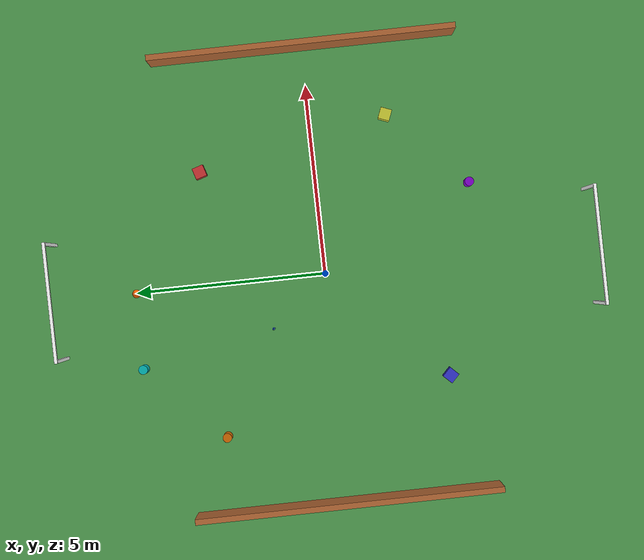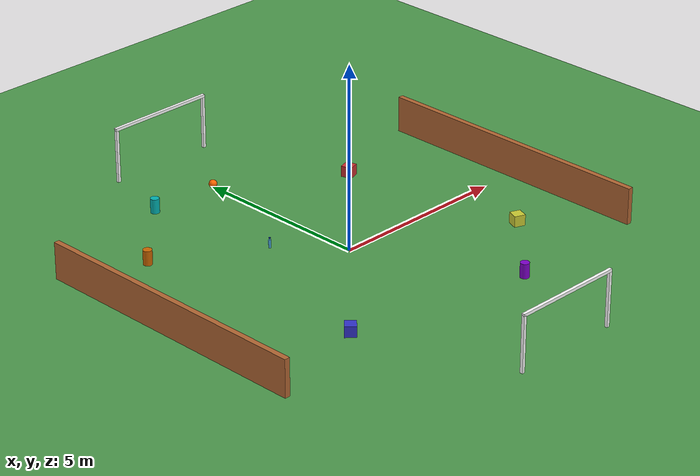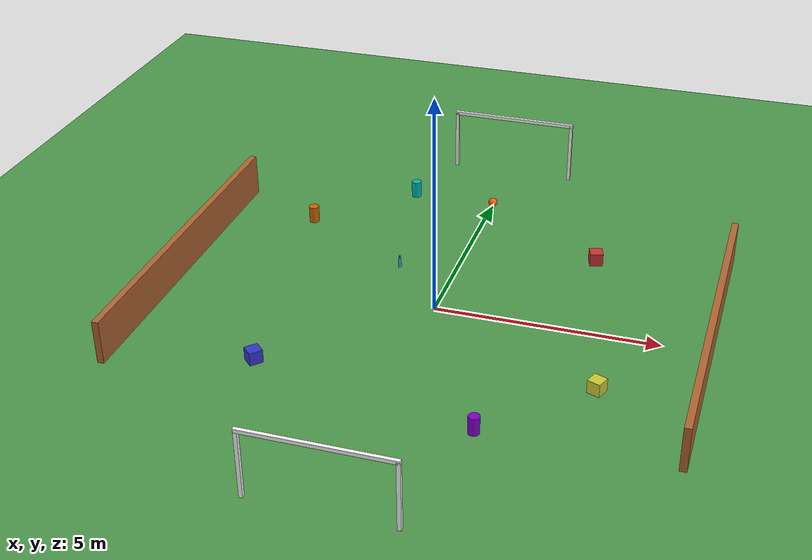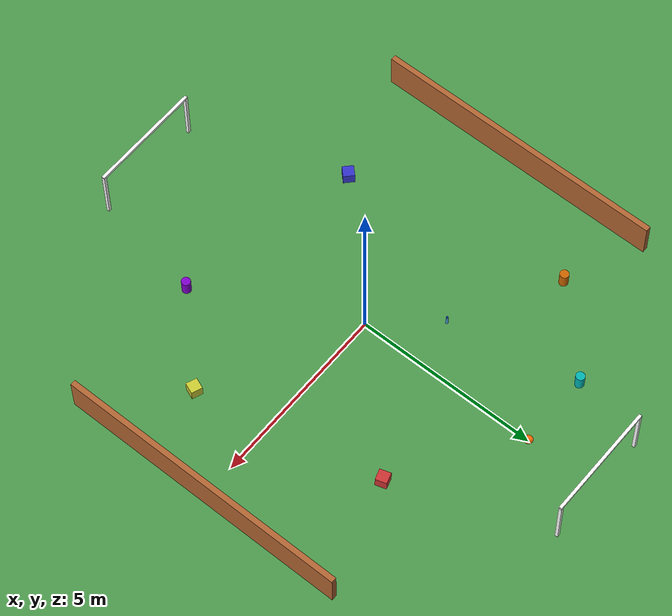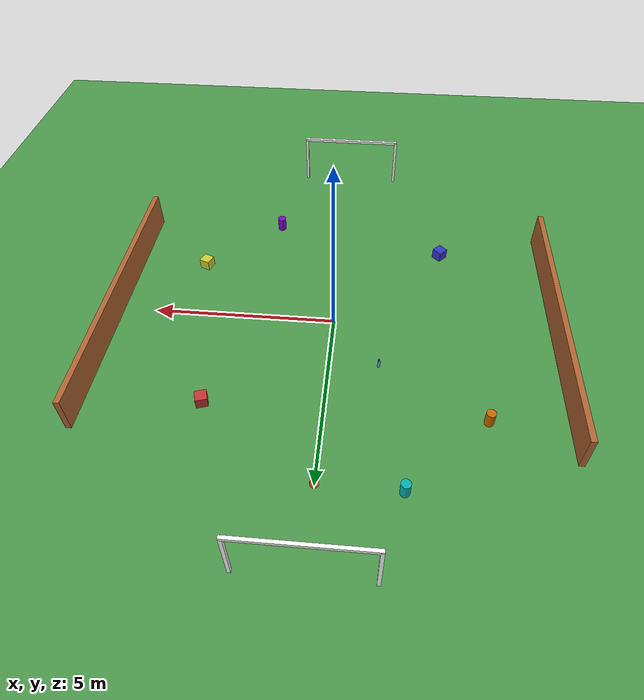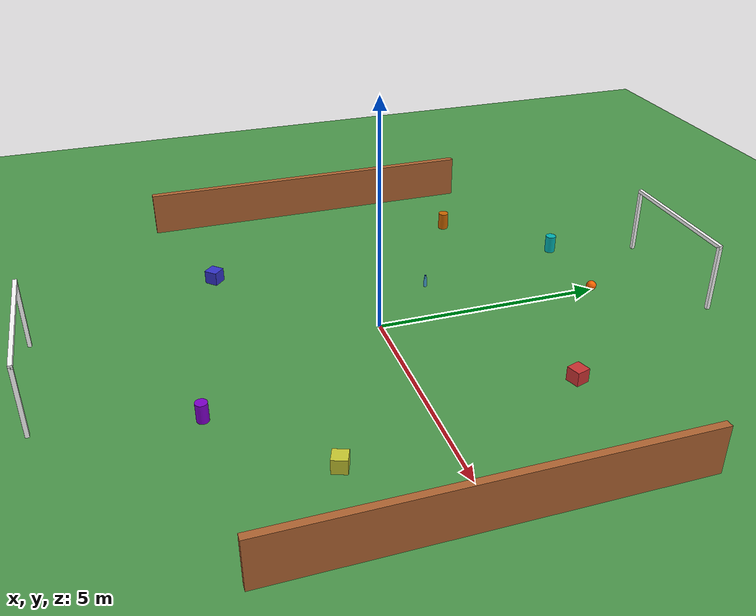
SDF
<sdf version="1.6">
 <world name="tb3_lab">
  <physics name="1ms" type="ignored">
   <max_step_size>0.001</max_step_size>
   <real_time_factor>1.0</real_time_factor>
  </physics>
  <plugin filename="gz-sim-physics-system" name="gz::sim::systems::Physics"/>
  <plugin filename="gz-sim-user-commands-system" name="gz::sim::systems::UserCommands"/>
  <plugin filename="gz-sim-scene-broadcaster-system" name="gz::sim::systems::SceneBroadcaster"/>
  <plugin filename="gz-sim-contact-system" name="gz::sim::systems::Contact"/>
  <plugin filename="gz-sim-sensors-system" name="gz::sim::systems::Sensors">
   <render_engine>ogre2</render_engine>
   <headless_rendering>true</headless_rendering>
  </plugin>
  <plugin filename="gz-sim-imu-system" name="gz::sim::systems::Imu"/>
  <light name="sun" type="directional">
   <pose>0 0 10 0 0 0</pose>
   <diffuse>0.8 0.8 0.8 1</diffuse>
   <specular>0.2 0.2 0.2 1</specular>
   <direction>-0.5 0.1 -0.9</direction>
  </light>
  <model name="ground_plane">
   <static>true</static>
   <link name="link">
    <collision name="col"><geometry><plane><normal>0 0 1</normal><size>30 30</size></plane></geometry></collision>
    <visual name="vis">
     <geometry><plane><normal>0 0 1</normal><size>30 30</size></plane></geometry>
     <material><ambient>0.3 0.6 0.3 1</ambient><diffuse>0.3 0.6 0.3 1</diffuse></material>
    </visual>
   </link>
  </model>
  <model name="goal_north">
   <static>true</static>
   <pose>0 7 0 0 0 0</pose>
   <link name="post_left">
    <pose>-1.5 0 0.75 0 0 0</pose>
    <collision name="col"><geometry><box><size>0.08 0.08 1.5</size></box></geometry></collision>
    <visual name="vis">
     <geometry><box><size>0.08 0.08 1.5</size></box></geometry>
     <material><ambient>1 1 1 1</ambient><diffuse>1 1 1 1</diffuse></material>
    </visual>
   </link>
   <link name="post_right">
    <pose>1.5 0 0.75 0 0 0</pose>
    <collision name="col"><geometry><box><size>0.08 0.08 1.5</size></box></geometry></collision>
    <visual name="vis">
     <geometry><box><size>0.08 0.08 1.5</size></box></geometry>
     <material><ambient>1 1 1 1</ambient><diffuse>1 1 1 1</diffuse></material>
    </visual>
   </link>
   <link name="crossbar">
    <pose>0 0 1.5 0 0 0</pose>
    <collision name="col"><geometry><box><size>3.08 0.08 0.08</size></box></geometry></collision>
    <visual name="vis">
     <geometry><box><size>3.08 0.08 0.08</size></box></geometry>
     <material><ambient>1 1 1 1</ambient><diffuse>1 1 1 1</diffuse></material>
    </visual>
   </link>
  </model>
  <model name="goal_south">
   <static>true</static>
   <pose>0 -7 0 0 0 0</pose>
   <link name="post_left">
    <pose>-1.5 0 0.75 0 0 0</pose>
    <collision name="col"><geometry><box><size>0.08 0.08 1.5</size></box></geometry></collision>
    <visual name="vis">
     <geometry><box><size>0.08 0.08 1.5</size></box></geometry>
     <material><ambient>1 1 1 1</ambient><diffuse>1 1 1 1</diffuse></material>
    </visual>
   </link>
   <link name="post_right">
    <pose>1.5 0 0.75 0 0 0</pose>
    <collision name="col"><geometry><box><size>0.08 0.08 1.5</size></box></geometry></collision>
    <visual name="vis">
     <geometry><box><size>0.08 0.08 1.5</size></box></geometry>
     <material><ambient>1 1 1 1</ambient><diffuse>1 1 1 1</diffuse></material>
    </visual>
   </link>
   <link name="crossbar">
    <pose>0 0 1.5 0 0 0</pose>
    <collision name="col"><geometry><box><size>3.08 0.08 0.08</size></box></geometry></collision>
    <visual name="vis">
     <geometry><box><size>3.08 0.08 0.08</size></box></geometry>
     <material><ambient>1 1 1 1</ambient><diffuse>1 1 1 1</diffuse></material>
    </visual>
   </link>
  </model>
  <model name="wall_east">
   <static>true</static>
   <pose>6 0 0.5 0 0 0</pose>
   <link name="link">
    <collision name="col"><geometry><box><size>0.15 8 1</size></box></geometry></collision>
    <visual name="vis">
     <geometry><box><size>0.15 8 1</size></box></geometry>
     <material><ambient>0.7 0.4 0.2 1</ambient><diffuse>0.7 0.4 0.2 1</diffuse></material>
    </visual>
   </link>
  </model>
  <model name="wall_west">
   <static>true</static>
   <pose>-6 0 0.5 0 0 0</pose>
   <link name="link">
    <collision name="col"><geometry><box><size>0.15 8 1</size></box></geometry></collision>
    <visual name="vis">
     <geometry><box><size>0.15 8 1</size></box></geometry>
     <material><ambient>0.7 0.4 0.2 1</ambient><diffuse>0.7 0.4 0.2 1</diffuse></material>
    </visual>
   </link>
  </model>
  <model name="box_1">
   <pose>3 3 0.15 0 0 0.3</pose>
   <link name="link">
    <inertial>
     <mass>1.0</mass>
     <inertia><ixx>0.0083</ixx><ixy>0</ixy><ixz>0</ixz><iyy>0.0083</iyy><iyz>0</iyz><izz>0.0083</izz></inertia>
    </inertial>
    <collision name="col"><geometry><box><size>0.3 0.3 0.3</size></box></geometry></collision>
    <visual name="vis">
     <geometry><box><size>0.3 0.3 0.3</size></box></geometry>
     <material><ambient>0.8 0.2 0.2 1</ambient><diffuse>0.8 0.2 0.2 1</diffuse></material>
    </visual>
   </link>
  </model>
  <model name="box_2">
   <pose>-3 -3 0.15 0 0 0.8</pose>
   <link name="link">
    <inertial>
     <mass>1.0</mass>
     <inertia><ixx>0.0083</ixx><ixy>0</ixy><ixz>0</ixz><iyy>0.0083</iyy><iyz>0</iyz><izz>0.0083</izz></inertia>
    </inertial>
    <collision name="col"><geometry><box><size>0.3 0.3 0.3</size></box></geometry></collision>
    <visual name="vis">
     <geometry><box><size>0.3 0.3 0.3</size></box></geometry>
     <material><ambient>0.2 0.2 0.8 1</ambient><diffuse>0.2 0.2 0.8 1</diffuse></material>
    </visual>
   </link>
  </model>
  <model name="box_3">
   <pose>4 -2 0.15 0 0 1.2</pose>
   <link name="link">
    <inertial>
     <mass>1.0</mass>
     <inertia><ixx>0.0083</ixx><ixy>0</ixy><ixz>0</ixz><iyy>0.0083</iyy><iyz>0</iyz><izz>0.0083</izz></inertia>
    </inertial>
    <collision name="col"><geometry><box><size>0.3 0.3 0.3</size></box></geometry></collision>
    <visual name="vis">
     <geometry><box><size>0.3 0.3 0.3</size></box></geometry>
     <material><ambient>0.8 0.8 0.2 1</ambient><diffuse>0.8 0.8 0.2 1</diffuse></material>
    </visual>
   </link>
  </model>
  <model name="bottle_living_room">
   <static>true</static>
   <pose>-1.3 1.5 0 0 0 0</pose>
   <link name="link">
    <visual name="body">
     <pose>0 0 0.11 0 0 0</pose>
     <geometry><cylinder><radius>0.035</radius><length>0.22</length></cylinder></geometry>
     <material>
      <ambient>0.5 0.8 1.0 0.85</ambient>
      <diffuse>0.3 0.65 1.0 0.80</diffuse>
      <specular>0.9 0.95 1.0 1.0</specular>
     </material>
    </visual>
    <visual name="neck">
     <pose>0 0 0.245 0 0 0</pose>
     <geometry><cylinder><radius>0.018</radius><length>0.05</length></cylinder></geometry>
     <material>
      <ambient>0.5 0.8 1.0 0.85</ambient>
      <diffuse>0.3 0.65 1.0 0.80</diffuse>
      <specular>0.9 0.95 1.0 1.0</specular>
     </material>
    </visual>
    <visual name="cap">
     <pose>0 0 0.278 0 0 0</pose>
     <geometry><cylinder><radius>0.022</radius><length>0.016</length></cylinder></geometry>
     <material>
      <ambient>0.05 0.2 0.7 1.0</ambient>
      <diffuse>0.05 0.2 0.7 1.0</diffuse>
      <specular>0.4 0.4 0.7 1.0</specular>
     </material>
    </visual>
    <collision name="col">
     <pose>0 0 0.137 0 0 0</pose>
     <geometry><cylinder><radius>0.035</radius><length>0.274</length></cylinder></geometry>
    </collision>
   </link>
  </model>
  <model name="cylinder_1">
   <pose>-4 3 0.2 0 0 0</pose>
   <link name="link">
    <inertial>
     <mass>0.8</mass>
     <inertia><ixx>0.0058</ixx><ixy>0</ixy><ixz>0</ixz><iyy>0.0058</iyy><iyz>0</iyz><izz>0.002</izz></inertia>
    </inertial>
    <collision name="col">
     <geometry><cylinder><radius>0.12</radius><length>0.4</length></cylinder></geometry>
    </collision>
    <visual name="vis">
     <geometry><cylinder><radius>0.12</radius><length>0.4</length></cylinder></geometry>
     <material><ambient>0.8 0.4 0.0 1</ambient><diffuse>0.8 0.4 0.0 1</diffuse></material>
    </visual>
   </link>
  </model>
  <model name="cylinder_2">
   <pose>2 -4 0.2 0 0 0</pose>
   <link name="link">
    <inertial>
     <mass>0.8</mass>
     <inertia><ixx>0.0058</ixx><ixy>0</ixy><ixz>0</ixz><iyy>0.0058</iyy><iyz>0</iyz><izz>0.002</izz></inertia>
    </inertial>
    <collision name="col">
     <geometry><cylinder><radius>0.12</radius><length>0.4</length></cylinder></geometry>
    </collision>
    <visual name="vis">
     <geometry><cylinder><radius>0.12</radius><length>0.4</length></cylinder></geometry>
     <material><ambient>0.5 0.0 0.8 1</ambient><diffuse>0.5 0.0 0.8 1</diffuse></material>
    </visual>
   </link>
  </model>
  <model name="cylinder_3">
   <pose>-2 5 0.2 0 0 0</pose>
   <link name="link">
    <inertial>
     <mass>0.8</mass>
     <inertia><ixx>0.0058</ixx><ixy>0</ixy><ixz>0</ixz><iyy>0.0058</iyy><iyz>0</iyz><izz>0.002</izz></inertia>
    </inertial>
    <collision name="col">
     <geometry><cylinder><radius>0.12</radius><length>0.4</length></cylinder></geometry>
    </collision>
    <visual name="vis">
     <geometry><cylinder><radius>0.12</radius><length>0.4</length></cylinder></geometry>
     <material><ambient>0.0 0.7 0.7 1</ambient><diffuse>0.0 0.7 0.7 1</diffuse></material>
    </visual>
   </link>
  </model>
  <model name="football">
   <pose>0 5 0.11 0 0 0</pose>
   <link name="link">
    <inertial>
     <mass>0.45</mass>
     <inertia><ixx>0.00222</ixx><ixy>0</ixy><ixz>0</ixz><iyy>0.00222</iyy><iyz>0</iyz><izz>0.00222</izz></inertia>
    </inertial>
    <collision name="col">
     <geometry><sphere><radius>0.11</radius></sphere></geometry>
     <surface>
      <friction><ode><mu>0.6</mu><mu2>0.6</mu2></ode></friction>
      <bounce><restitution_coefficient>0.5</restitution_coefficient><threshold>0.01</threshold></bounce>
     </surface>
    </collision>
    <visual name="vis">
     <geometry><sphere><radius>0.11</radius></sphere></geometry>
     <material>
      <ambient>1.0 0.4 0.0 1</ambient>
      <diffuse>1.0 0.4 0.0 1</diffuse>
      <specular>0.8 0.8 0.8 1</specular>
     </material>
    </visual>
   </link>
  </model>
 </world>
</sdf>
